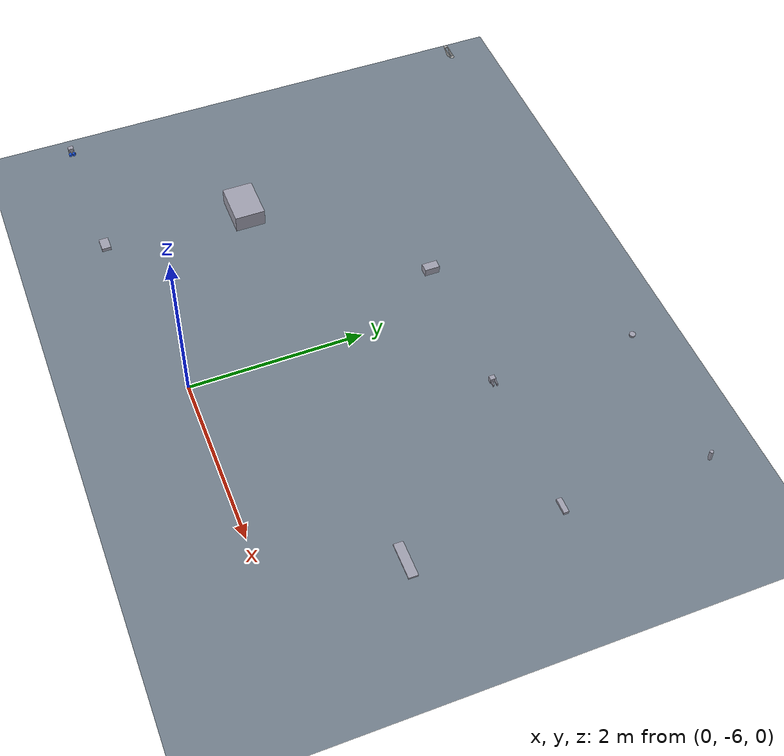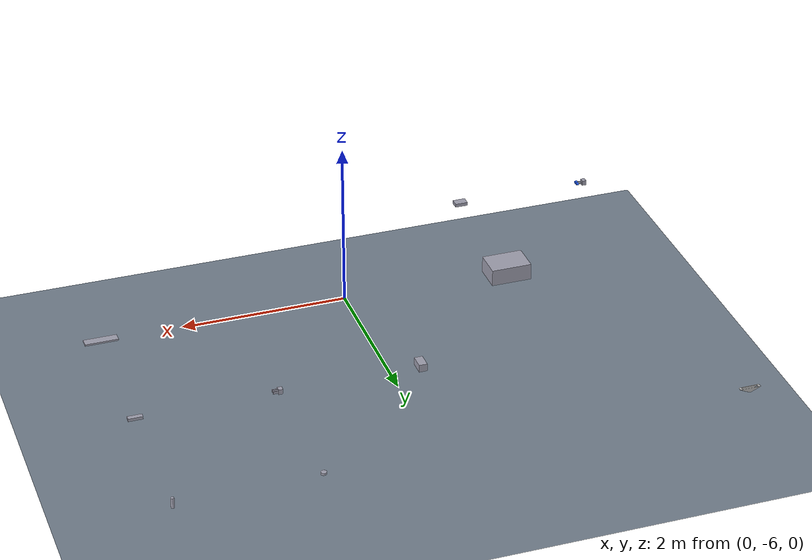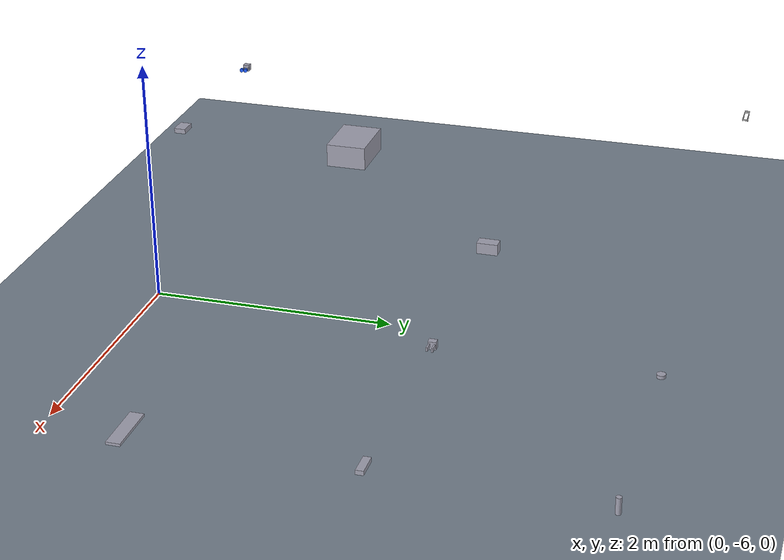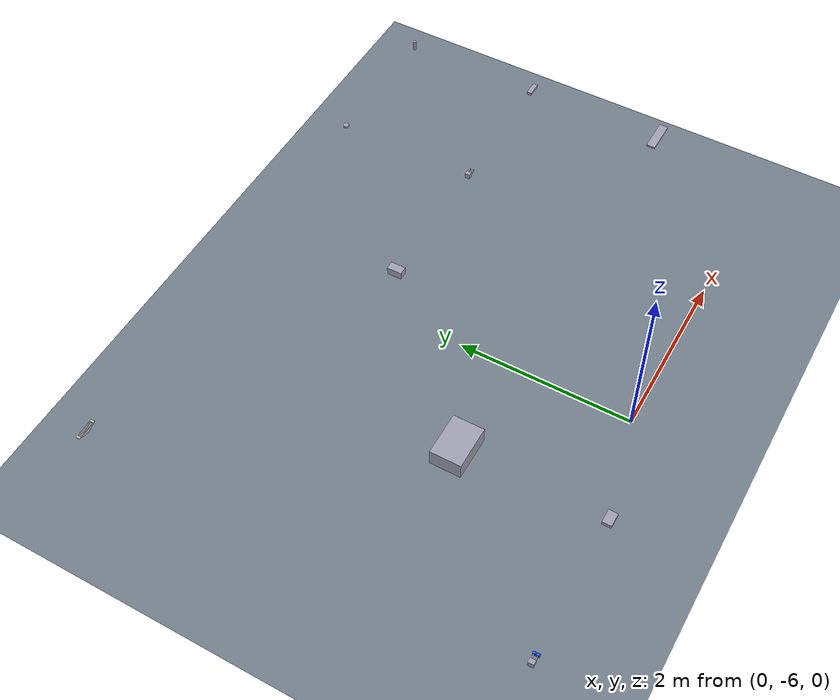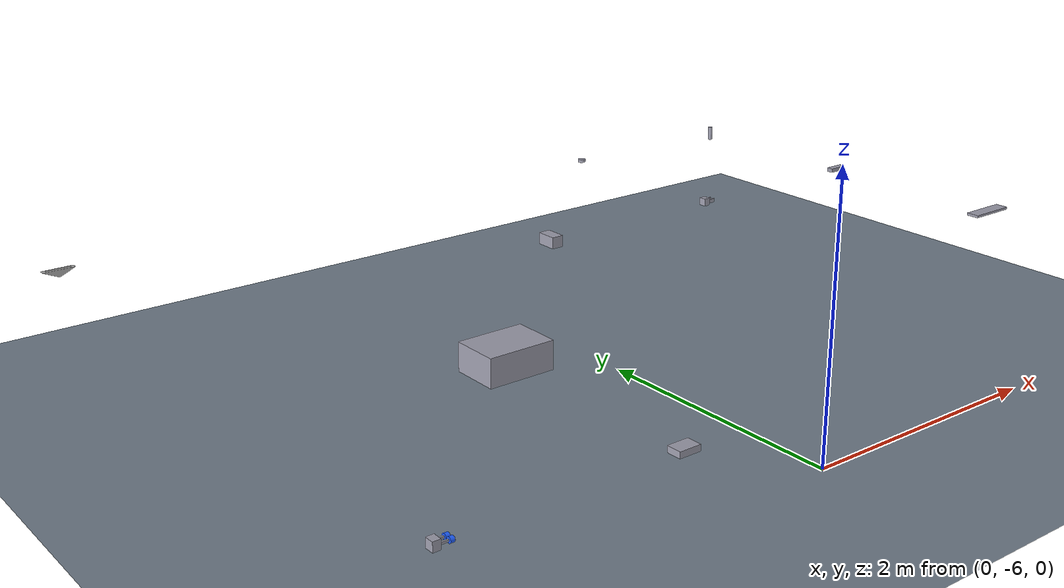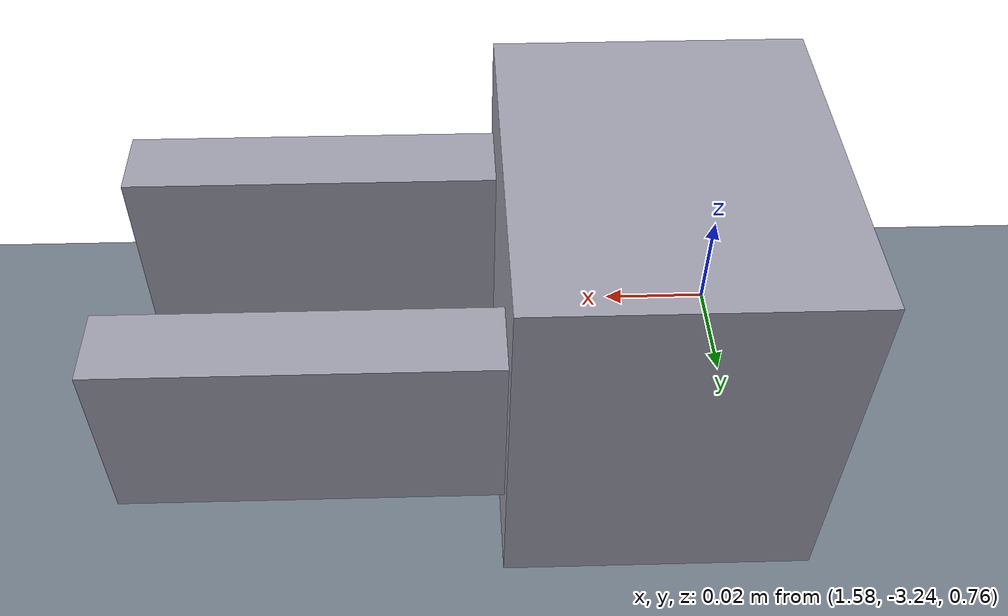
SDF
<sdf version="1.12">
 <world name="parts_check">
  <physics name="1ms" type="ode">
   <max_step_size>0.001</max_step_size>
   <real_time_factor>1.0</real_time_factor>
  </physics>
  <plugin filename="gz-sim-physics-system" name="gz::sim::systems::Physics"/>
  <plugin filename="gz-sim-user-commands-system" name="gz::sim::systems::UserCommands"/>
  <plugin filename="gz-sim-scene-broadcaster-system" name="gz::sim::systems::SceneBroadcaster"/>
  <scene><ambient>0.5 0.5 0.5 1</ambient><background>0.6 0.72 0.85 1</background><grid>true</grid></scene>
  <light type="directional" name="sun">
   <pose>0 0 10 0 0 0</pose>
   <diffuse>0.9 0.9 0.9 1</diffuse>
   <specular>0.2 0.2 0.2 1</specular>
   <direction>-0.4 0.3 -0.85</direction>
  </light>
  <model name="ground">
   <static>true</static>
   <link name="link">
    <visual name="v">
     <geometry><plane><normal>0 0 1</normal><size>20 20</size></plane></geometry>
     <material><ambient>0.45 0.5 0.55 1</ambient><diffuse>0.45 0.5 0.55 1</diffuse></material>
    </visual>
   </link>
  </model>
  <model name="blueboat_ping_singlebeam_mount">
   <static>true</static>
   <pose>-3.20 -1.60 0.8 0 0 0</pose>
   <link name="blueboat_ping_singlebeam_mount">
    <inertial>
     <pose>0.00102118 -0.0018467799999999999 0.0045204199999999998 0 0 0</pose>
     <mass>0.058676899999999997</mass>
     <inertia>
      <ixx>2.9008200000000001e-05</ixx>
      <ixy>-3.7256200000000001e-20</ixy>
      <ixz>-3.4925199999999999e-13</ixz>
      <iyy>0.00029183200000000001</iyy>
      <iyz>-1.0888e-12</iyz>
      <izz>0.00030192199999999999</izz>
     </inertia>
    </inertial>
    <collision name="blueboat_ping_singlebeam_mount_collision">
     <geometry>
      <mesh>
       <scale>1 1 1</scale>
       <uri>model://bluerobotics_parts/models/blueboat_ping_singlebeam_mount/blueboat_ping_singlebeam_mount.collision.stl</uri>
      </mesh>
     </geometry>
    </collision>
    <visual name="blueboat_ping_singlebeam_mount_visual">
     <pose>0 0 0 1.5708 0 0</pose>
     <geometry>
      <mesh>
       <scale>1 1 1</scale>
       <uri>model://bluerobotics_parts/models/blueboat_ping_singlebeam_mount/blueboat_ping_singlebeam_mount.visual.glb</uri>
      </mesh>
     </geometry>
    </visual>
   </link>
   <frame name="blueboat_ping_singlebeam_mount_ping_joint" attached_to="blueboat_ping_singlebeam_mount">
    <pose>0 0 -0.01 0 0 0</pose>
   </frame>
   <frame name="blueboat_ping_singlebeam_mount_ping" attached_to="blueboat_ping_singlebeam_mount_ping_joint"/>
  </model>
  <model name="dvl_a50">
   <static>true</static>
   <pose>1.60 -1.60 0.8 0 0 0</pose>
   <link name="dvl_a50">
    <inertial>
     <mass>0.17000000000000001</mass>
     <inertia>
      <ixx>5.5136666666666677e-05</ixx>
      <ixy>0</ixy>
      <ixz>0</ixz>
      <iyy>5.5136666666666677e-05</iyy>
      <iyz>0</iyz>
      <izz>9.2565000000000019e-05</izz>
     </inertia>
    </inertial>
    <visual name="dvl_a50_visual">
     <geometry>
      <cylinder><length>0.025000000000000001</length><radius>0.033000000000000002</radius></cylinder>
     </geometry>
     <material><diffuse>0.625 0.625 0.6875 1</diffuse><ambient>0.625 0.625 0.6875 1</ambient></material>
    </visual>
   </link>
  </model>
  <model name="explorehd_camera">
   <static>true</static>
   <pose>3.20 -1.60 0.8 0 0 0</pose>
   <link name="explorehd_camera">
    <inertial>
     <mass>0.080000000000000002</mass>
     <inertia>
      <ixx>0.00010360499999999999</ixx>
      <ixy>0</ixy>
      <ixz>0</ixz>
      <iyy>0.00010360499999999999</iyy>
      <iyz>0</iyz>
      <izz>1.521e-05</izz>
     </inertia>
    </inertial>
    <visual name="explorehd_camera_visual">
     <geometry><cylinder><length>0.12</length><radius>0.0195</radius></cylinder></geometry>
     <material><diffuse>0.625 0.625 0.6875 1</diffuse><ambient>0.625 0.625 0.6875 1</ambient></material>
    </visual>
   </link>
  </model>
  <model name="marinesitu_c3">
   <static>true</static>
   <pose>0.00 -3.20 0.8 0 0 0</pose>
   <link name="marinesitu_c3">
    <inertial>
     <mass>0.42999999999999999</mass>
     <inertia>
      <ixx>0.0012593983333333331</ixx>
      <ixy>0</ixy>
      <ixz>0</ixz>
      <iyy>0.00060723166666666671</iyy>
      <iyz>0</iyz>
      <izz>0.001298958333333334</izz>
     </inertia>
    </inertial>
    <visual name="marinesitu_c3_visual">
     <geometry><box><size>0.095000000000000001 0.16500000000000001 0.088999999999999996</size></box></geometry>
     <material><diffuse>0.625 0.625 0.6875 1</diffuse><ambient>0.625 0.625 0.6875 1</ambient></material>
    </visual>
   </link>
  </model>
  <model name="newton_gripper">
   <static>true</static>
   <pose>1.60 -3.20 0.8 0 0 0</pose>
   <link name="newton_gripper">
    <inertial>
     <mass>0.29999999999999999</mass>
     <inertia>
      <ixx>0.00018000000000000001</ixx>
      <ixy>0</ixy>
      <ixz>0</ixz>
      <iyy>0.00015249999999999999</iyy>
      <iyz>0</iyz>
      <izz>0.00015249999999999999</izz>
     </inertia>
    </inertial>
    <collision name="newton_gripper_collision">
     <geometry><box><size>0.050000000000000003 0.059999999999999998 0.059999999999999998</size></box></geometry>
    </collision>
    <visual name="newton_gripper_visual">
     <geometry><box><size>0.050000000000000003 0.059999999999999998 0.059999999999999998</size></box></geometry>
     <material><diffuse>0.625 0.625 0.6875 1</diffuse><ambient>0.625 0.625 0.6875 1</ambient></material>
    </visual>
   </link>
   <joint name="newton_gripper_jaw_left_joint" type="revolute">
    <pose relative_to="newton_gripper">0.025000000000000001 0.02 0 0 0 0</pose>
    <parent>newton_gripper</parent>
    <child>newton_gripper_jaw_left</child>
    <axis>
     <xyz>0 0 1</xyz>
     <limit><lower>0</lower><upper>0.59999999999999998</upper><effort>10</effort><velocity>2</velocity></limit>
     <dynamics><spring_reference>0</spring_reference><spring_stiffness>0</spring_stiffness></dynamics>
    </axis>
   </joint>
   <link name="newton_gripper_jaw_left">
    <pose relative_to="newton_gripper_jaw_left_joint">0 0 0 0 0 0</pose>
    <inertial>
     <pose>0.029999999999999999 0 0 0 0 0</pose>
     <mass>0.10000000000000001</mass>
     <inertia>
      <ixx>8.6999999999999997e-06</ixx>
      <ixy>0</ixy>
      <ixz>0</ixz>
      <iyy>3.7499999999999997e-05</iyy>
      <iyz>0</iyz>
      <izz>3.1199999999999999e-05</izz>
     </inertia>
    </inertial>
    <collision name="newton_gripper_jaw_left_collision">
     <pose>0.029999999999999999 0 0 0 0 0</pose>
     <geometry><box><size>0.059999999999999998 0.012 0.029999999999999999</size></box></geometry>
    </collision>
    <visual name="newton_gripper_jaw_left_visual">
     <pose>0.029999999999999999 0 0 0 0 0</pose>
     <geometry><box><size>0.059999999999999998 0.012 0.029999999999999999</size></box></geometry>
     <material><diffuse>0.625 0.625 0.6875 1</diffuse><ambient>0.625 0.625 0.6875 1</ambient></material>
    </visual>
   </link>
   <joint name="newton_gripper_jaw_right_joint" type="revolute">
    <pose relative_to="newton_gripper">0.025000000000000001 -0.02 0 0 0 0</pose>
    <parent>newton_gripper</parent>
    <child>newton_gripper_jaw_right</child>
    <axis>
     <xyz>0 0 -1</xyz>
     <limit><lower>0</lower><upper>0.59999999999999998</upper><effort>10</effort><velocity>2</velocity></limit>
     <dynamics><spring_reference>0</spring_reference><spring_stiffness>0</spring_stiffness></dynamics>
    </axis>
   </joint>
   <link name="newton_gripper_jaw_right">
    <pose relative_to="newton_gripper_jaw_right_joint">0 0 0 0 0 0</pose>
    <inertial>
     <pose>0.029999999999999999 0 0 0 0 0</pose>
     <mass>0.10000000000000001</mass>
     <inertia>
      <ixx>8.6999999999999997e-06</ixx>
      <ixy>0</ixy>
      <ixz>0</ixz>
      <iyy>3.7499999999999997e-05</iyy>
      <iyz>0</iyz>
      <izz>3.1199999999999999e-05</izz>
     </inertia>
    </inertial>
    <collision name="newton_gripper_jaw_right_collision">
     <pose>0.029999999999999999 0 0 0 0 0</pose>
     <geometry><box><size>0.059999999999999998 0.012 0.029999999999999999</size></box></geometry>
    </collision>
    <visual name="newton_gripper_jaw_right_visual">
     <pose>0.029999999999999999 0 0 0 0 0</pose>
     <geometry><box><size>0.059999999999999998 0.012 0.029999999999999999</size></box></geometry>
     <material><diffuse>0.625 0.625 0.6875 1</diffuse><ambient>0.625 0.625 0.6875 1</ambient></material>
    </visual>
   </link>
  </model>
  <model name="omniscan_450_fs">
   <static>true</static>
   <pose>3.20 -3.20 0.8 0 0 0</pose>
   <link name="omniscan_450_fs">
    <inertial>
     <mass>0.44</mass>
     <inertia>
      <ixx>0.00015084666666666661</ixx>
      <ixy>0</ixy>
      <ixz>0</ixz>
      <iyy>0.0010381800000000001</iyy>
      <iyz>0</iyz>
      <izz>0.0011091666666666669</izz>
     </inertia>
    </inertial>
    <visual name="omniscan_450_fs_visual">
     <geometry><box><size>0.16500000000000001 0.055 0.033000000000000002</size></box></geometry>
     <material><diffuse>0.625 0.625 0.6875 1</diffuse><ambient>0.625 0.625 0.6875 1</ambient></material>
    </visual>
   </link>
  </model>
  <model name="payload_skid">
   <static>true</static>
   <pose>-1.60 -4.80 0.8 0 0 0</pose>
   <link name="payload_skid">
    <inertial>
     <mass>3</mass>
     <inertia>
      <ixx>0.038263250000000013</ixx>
      <ixy>0</ixy>
      <ixz>0</ixz>
      <iyy>0.066108500000000001</iyy>
      <iyz>0</iyz>
      <izz>0.084967249999999994</izz>
     </inertia>
    </inertial>
    <visual name="payload_skid_visual">
     <geometry><box><size>0.47499999999999998 0.33800000000000002 0.19700000000000001</size></box></geometry>
     <material><diffuse>0.625 0.625 0.6875 1</diffuse><ambient>0.625 0.625 0.6875 1</ambient></material>
    </visual>
   </link>
  </model>
  <model name="roof_rack">
   <static>true</static>
   <pose>3.20 -4.80 0.8 0 0 0</pose>
   <link name="roof_rack">
    <inertial>
     <mass>0.20000000000000001</mass>
     <inertia>
      <ixx>0.00017333333333333339</ixx>
      <ixy>0</ixy>
      <ixz>0</ixz>
      <iyy>0.0024133333333333329</iyy>
      <iyz>0</iyz>
      <izz>0.0025733333333333329</izz>
     </inertia>
    </inertial>
    <visual name="roof_rack_visual">
     <geometry><box><size>0.38 0.10000000000000001 0.02</size></box></geometry>
     <material><diffuse>0.625 0.625 0.6875 1</diffuse><ambient>0.625 0.625 0.6875 1</ambient></material>
    </visual>
   </link>
  </model>
  <model name="sediment_sampler">
   <static>true</static>
   <pose>-3.20 -6.40 0.8 0 0 0</pose>
   <link name="sediment_sampler">
    <inertial>
     <mass>0.29999999999999999</mass>
     <inertia>
      <ixx>0.00018000000000000001</ixx>
      <ixy>0</ixy>
      <ixz>0</ixz>
      <iyy>0.00015249999999999999</iyy>
      <iyz>0</iyz>
      <izz>0.00015249999999999999</izz>
     </inertia>
    </inertial>
    <collision name="sediment_sampler_collision">
     <geometry><box><size>0.050000000000000003 0.059999999999999998 0.059999999999999998</size></box></geometry>
    </collision>
    <visual name="sediment_sampler_visual">
     <geometry><box><size>0.050000000000000003 0.059999999999999998 0.059999999999999998</size></box></geometry>
     <material><diffuse>0.625 0.625 0.6875 1</diffuse><ambient>0.625 0.625 0.6875 1</ambient></material>
    </visual>
   </link>
   <joint name="sediment_sampler_cup_left_joint" type="revolute">
    <pose relative_to="sediment_sampler">0.025000000000000001 0.02 0 0 0 0</pose>
    <parent>sediment_sampler</parent>
    <child>sediment_sampler_cup_left</child>
    <axis>
     <xyz>0 0 1</xyz>
     <limit><lower>0</lower><upper>0.59999999999999998</upper><effort>10</effort><velocity>2</velocity></limit>
     <dynamics><spring_reference>0</spring_reference><spring_stiffness>0</spring_stiffness></dynamics>
    </axis>
   </joint>
   <link name="sediment_sampler_cup_left">
    <pose relative_to="sediment_sampler_cup_left_joint">0 0 0 0 0 0</pose>
    <inertial>
     <pose>0.028000000000000001 0 0 0 0 0</pose>
     <mass>0.10000000000000001</mass>
     <inertia>
      <ixx>2.0333333333333331e-06</ixx>
      <ixy>0</ixy>
      <ixz>0</ixz>
      <iyy>2.6408333333333329e-05</iyy>
      <iyz>0</iyz>
      <izz>2.6041666666666662e-05</izz>
     </inertia>
    </inertial>
    <collision name="sediment_sampler_cup_left_collision">
     <pose>0.044999999999999998 0 0 0 0 0</pose>
     <geometry><box><size>0.089999999999999997 0.02 0.025999999999999999</size></box></geometry>
    </collision>
    <visual name="sediment_sampler_cup_left_visual">
     <pose>0.028000000000000001 0 0 0 0 0</pose>
     <geometry><box><size>0.055 0.01 0.012</size></box></geometry>
     <material><diffuse>0.625 0.625 0.6875 1</diffuse><ambient>0.625 0.625 0.6875 1</ambient></material>
    </visual>
    <visual name="sediment_sampler_cup_left_visual_1">
     <pose>0.062 0 0 0 1.5707963267948966 0</pose>
     <geometry>
      <cylinder><length>0.025999999999999999</length><radius>0.017999999999999999</radius></cylinder>
     </geometry>
     <material><diffuse>0.125 0.37500003 1 1</diffuse><ambient>0.125 0.37500003 1 1</ambient></material>
    </visual>
   </link>
   <joint name="sediment_sampler_cup_right_joint" type="revolute">
    <pose relative_to="sediment_sampler">0.025000000000000001 -0.02 0 0 0 0</pose>
    <parent>sediment_sampler</parent>
    <child>sediment_sampler_cup_right</child>
    <axis>
     <xyz>0 0 -1</xyz>
     <limit><lower>0</lower><upper>0.59999999999999998</upper><effort>10</effort><velocity>2</velocity></limit>
     <dynamics><spring_reference>0</spring_reference><spring_stiffness>0</spring_stiffness></dynamics>
    </axis>
   </joint>
   <link name="sediment_sampler_cup_right">
    <pose relative_to="sediment_sampler_cup_right_joint">0 0 0 0 0 0</pose>
    <inertial>
     <pose>0.028000000000000001 0 0 0 0 0</pose>
     <mass>0.10000000000000001</mass>
     <inertia>
      <ixx>2.0333333333333331e-06</ixx>
      <ixy>0</ixy>
      <ixz>0</ixz>
      <iyy>2.6408333333333329e-05</iyy>
      <iyz>0</iyz>
      <izz>2.6041666666666662e-05</izz>
     </inertia>
    </inertial>
    <collision name="sediment_sampler_cup_right_collision">
     <pose>0.044999999999999998 0 0 0 0 0</pose>
     <geometry><box><size>0.089999999999999997 0.02 0.025999999999999999</size></box></geometry>
    </collision>
    <visual name="sediment_sampler_cup_right_visual">
     <pose>0.028000000000000001 0 0 0 0 0</pose>
     <geometry><box><size>0.055 0.01 0.012</size></box></geometry>
     <material><diffuse>0.625 0.625 0.6875 1</diffuse><ambient>0.625 0.625 0.6875 1</ambient></material>
    </visual>
    <visual name="sediment_sampler_cup_right_visual_1">
     <pose>0.062 0 0 0 1.5707963267948966 0</pose>
     <geometry>
      <cylinder><length>0.025999999999999999</length><radius>0.017999999999999999</radius></cylinder>
     </geometry>
     <material><diffuse>0.125 0.37500003 1 1</diffuse><ambient>0.125 0.37500003 1 1</ambient></material>
    </visual>
   </link>
  </model>
  <model name="sonoptix_echo">
   <static>true</static>
   <pose>-1.60 -6.40 0.8 0 0 0</pose>
   <link name="sonoptix_echo">
    <inertial>
     <mass>0.75</mass>
     <inertia>
      <ixx>0.00073525000000000012</ixx>
      <ixy>0</ixy>
      <ixz>0</ixz>
      <iyy>0.0015165000000000001</iyy>
      <iyz>0</iyz>
      <izz>0.0020312500000000001</izz>
     </inertia>
    </inertial>
    <visual name="sonoptix_echo_visual">
     <geometry><box><size>0.14999999999999999 0.10000000000000001 0.042000000000000003</size></box></geometry>
     <material><diffuse>0.625 0.625 0.6875 1</diffuse><ambient>0.625 0.625 0.6875 1</ambient></material>
    </visual>
   </link>
  </model>
 </world>
</sdf>
